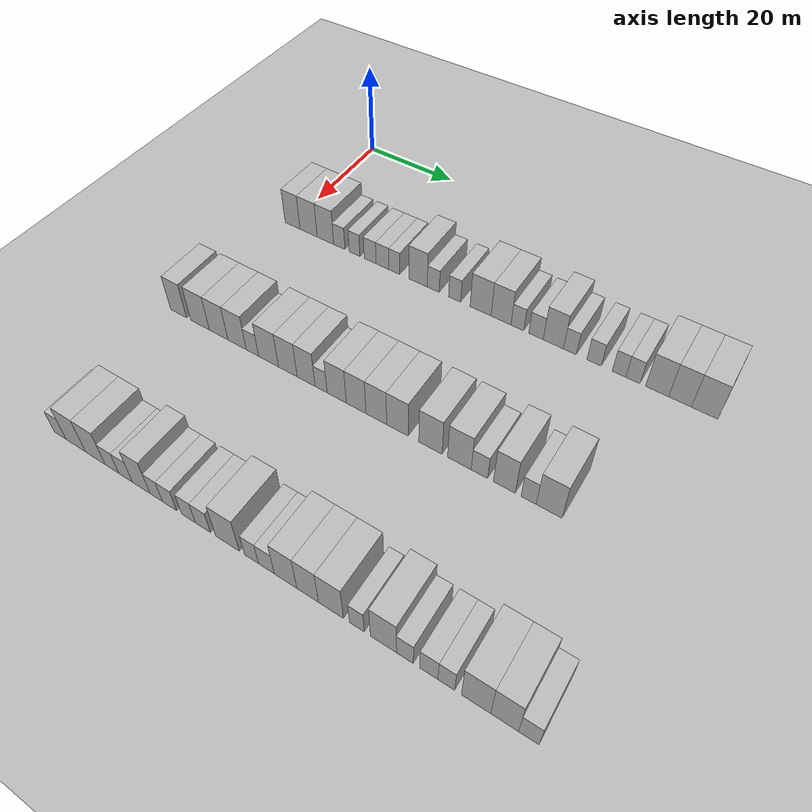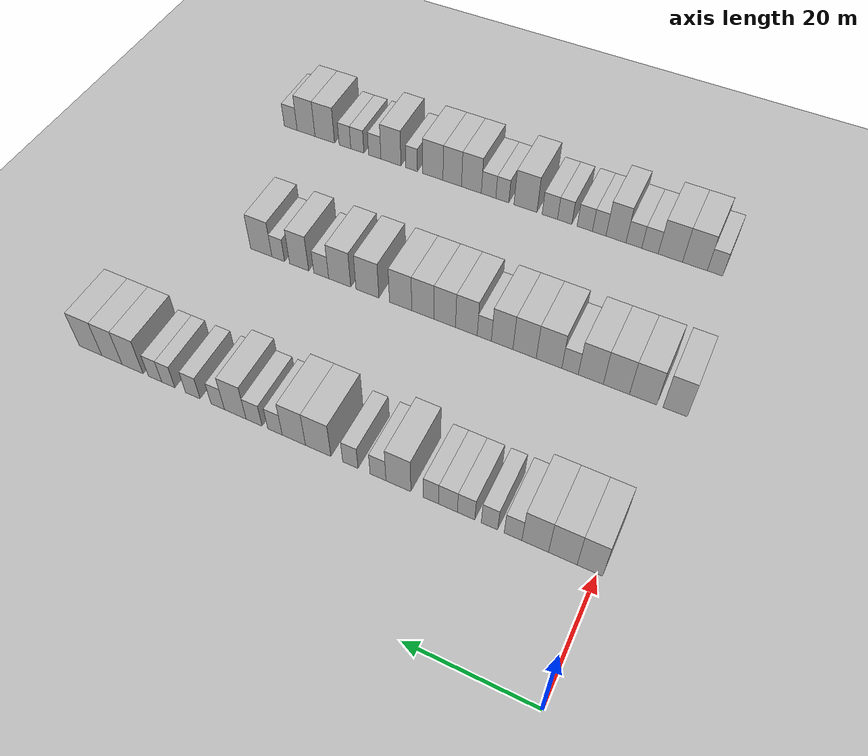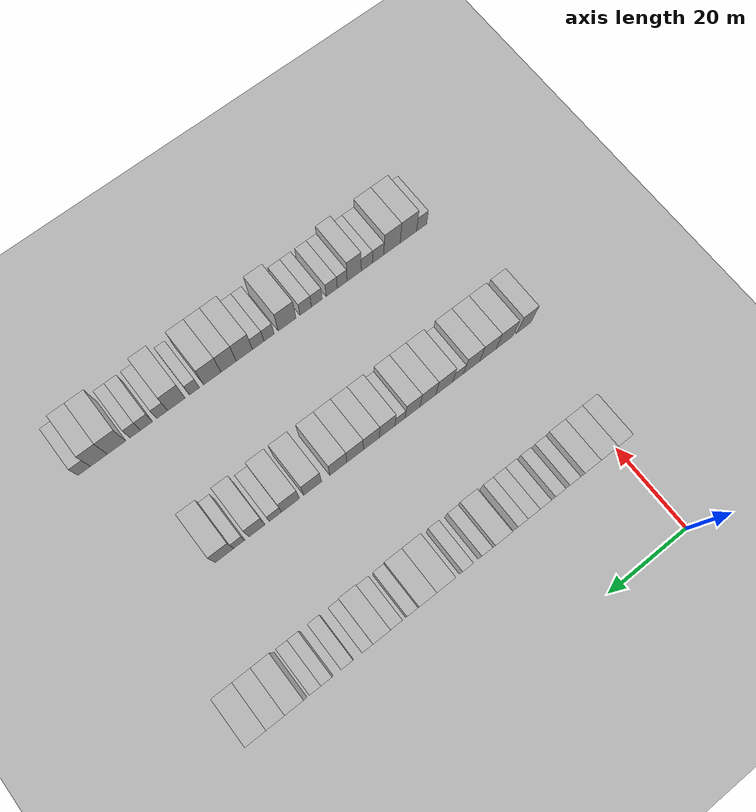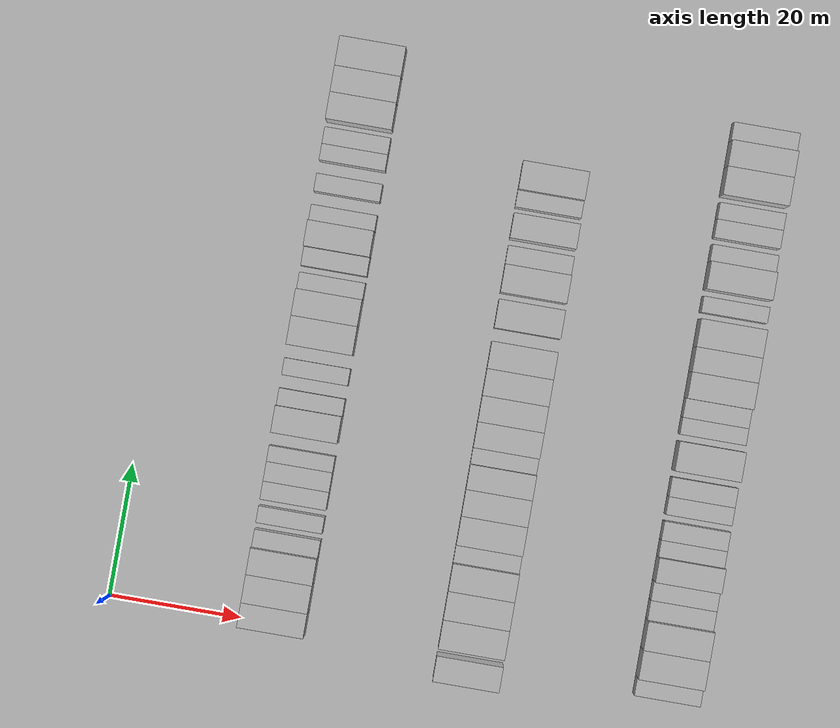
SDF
<sdf version="1.6">
 <world name="default">
  <include><name>ground_plane_1</name><uri>model://HANNAS_ground_plane</uri></include>
  <include>
   <name>ground_plane_2</name>
   <uri>model://HANNAS_ground_plane</uri>
   <pose>100 0 0  0 0 0</pose>
  </include>
  <model name="building_62">
   <static>1</static>
   <pose>25.0000 1.0413 0 0.000000 0.000000 0.000000</pose>
   <link name="link">
    <pose>0 0 4.50 0 0 0</pose>
    <collision name="collision"><geometry><box><size>10.0000 3.7216 9.0000</size></box></geometry></collision>
    <visual name="visual">
     <cast_shadows>0</cast_shadows>
     <geometry><box><size>10.0000 3.7216 9.0000</size></box></geometry>
     <material>
      <script>
       <uri>model://HANNAS_wall/materials/scripts</uri>
       <uri>model://HANNAS_wall/materials/textures</uri>
       <name>vrc/HANNAS_wall</name>
      </script>
     </material>
    </visual>
   </link>
  </model>
  <model name="building_63">
   <static>1</static>
   <pose>25.0000 5.0200 0 0.000000 0.000000 0.000000</pose>
   <link name="link">
    <pose>0 0 4.50 0 0 0</pose>
    <collision name="collision"><geometry><box><size>10.0000 4.2359 9.0000</size></box></geometry></collision>
    <visual name="visual">
     <cast_shadows>0</cast_shadows>
     <geometry><box><size>10.0000 4.2359 9.0000</size></box></geometry>
     <material>
      <script>
       <uri>model://HANNAS_wall/materials/scripts</uri>
       <uri>model://HANNAS_wall/materials/textures</uri>
       <name>vrc/HANNAS_wall</name>
      </script>
     </material>
    </visual>
   </link>
  </model>
  <model name="building_64">
   <static>1</static>
   <pose>25.0000 9.1388 0 0.000000 0.000000 0.000000</pose>
   <link name="link">
    <pose>0 0 4.50 0 0 0</pose>
    <collision name="collision"><geometry><box><size>10.0000 4.0017 9.0000</size></box></geometry></collision>
    <visual name="visual">
     <cast_shadows>0</cast_shadows>
     <geometry><box><size>10.0000 4.0017 9.0000</size></box></geometry>
     <material>
      <script>
       <uri>model://HANNAS_wall/materials/scripts</uri>
       <uri>model://HANNAS_wall/materials/textures</uri>
       <name>vrc/HANNAS_wall</name>
      </script>
     </material>
    </visual>
   </link>
  </model>
  <model name="building_65">
   <static>1</static>
   <pose>25.0000 12.4869 0 0.000000 0.000000 0.000000</pose>
   <link name="link">
    <pose>0 0 3.00 0 0 0</pose>
    <collision name="collision"><geometry><box><size>10.0000 2.6944 6.0000</size></box></geometry></collision>
    <visual name="visual">
     <cast_shadows>0</cast_shadows>
     <geometry><box><size>10.0000 2.6944 6.0000</size></box></geometry>
     <material>
      <script>
       <uri>model://HANNAS_wall/materials/scripts</uri>
       <uri>model://HANNAS_wall/materials/textures</uri>
       <name>vrc/HANNAS_wall</name>
      </script>
     </material>
    </visual>
   </link>
  </model>
  <model name="building_66">
   <static>1</static>
   <pose>25.0000 16.1002 0 0.000000 0.000000 0.000000</pose>
   <link name="link">
    <pose>0 0 3.00 0 0 0</pose>
    <collision name="collision"><geometry><box><size>10.0000 2.5323 6.0000</size></box></geometry></collision>
    <visual name="visual">
     <cast_shadows>0</cast_shadows>
     <geometry><box><size>10.0000 2.5323 6.0000</size></box></geometry>
     <material>
      <script>
       <uri>model://HANNAS_wall/materials/scripts</uri>
       <uri>model://HANNAS_wall/materials/textures</uri>
       <name>vrc/HANNAS_wall</name>
      </script>
     </material>
    </visual>
   </link>
  </model>
  <model name="building_67">
   <static>1</static>
   <pose>25.0000 19.7381 0 0.000000 0.000000 0.000000</pose>
   <link name="link">
    <pose>0 0 3.00 0 0 0</pose>
    <collision name="collision"><geometry><box><size>10.0000 2.7435 6.0000</size></box></geometry></collision>
    <visual name="visual">
     <cast_shadows>0</cast_shadows>
     <geometry><box><size>10.0000 2.7435 6.0000</size></box></geometry>
     <material>
      <script>
       <uri>model://HANNAS_wall/materials/scripts</uri>
       <uri>model://HANNAS_wall/materials/textures</uri>
       <name>vrc/HANNAS_wall</name>
      </script>
     </material>
    </visual>
   </link>
  </model>
  <model name="building_68">
   <static>1</static>
   <pose>25.0000 22.5911 0 0.000000 0.000000 0.000000</pose>
   <link name="link">
    <pose>0 0 3.00 0 0 0</pose>
    <collision name="collision"><geometry><box><size>10.0000 2.9625 6.0000</size></box></geometry></collision>
    <visual name="visual">
     <cast_shadows>0</cast_shadows>
     <geometry><box><size>10.0000 2.9625 6.0000</size></box></geometry>
     <material>
      <script>
       <uri>model://HANNAS_wall/materials/scripts</uri>
       <uri>model://HANNAS_wall/materials/textures</uri>
       <name>vrc/HANNAS_wall</name>
      </script>
     </material>
    </visual>
   </link>
  </model>
  <model name="building_69">
   <static>1</static>
   <pose>25.0000 25.2950 0 0.000000 0.000000 0.000000</pose>
   <link name="link">
    <pose>0 0 3.00 0 0 0</pose>
    <collision name="collision"><geometry><box><size>10.0000 2.4454 6.0000</size></box></geometry></collision>
    <visual name="visual">
     <cast_shadows>0</cast_shadows>
     <geometry><box><size>10.0000 2.4454 6.0000</size></box></geometry>
     <material>
      <script>
       <uri>model://HANNAS_wall/materials/scripts</uri>
       <uri>model://HANNAS_wall/materials/textures</uri>
       <name>vrc/HANNAS_wall</name>
      </script>
     </material>
    </visual>
   </link>
  </model>
  <model name="building_70">
   <static>1</static>
   <pose>25.0000 30.5503 0 0.000000 0.000000 0.000000</pose>
   <link name="link">
    <pose>0 0 4.50 0 0 0</pose>
    <collision name="collision"><geometry><box><size>10.0000 4.0652 9.0000</size></box></geometry></collision>
    <visual name="visual">
     <cast_shadows>0</cast_shadows>
     <geometry><box><size>10.0000 4.0652 9.0000</size></box></geometry>
     <material>
      <script>
       <uri>model://HANNAS_wall/materials/scripts</uri>
       <uri>model://HANNAS_wall/materials/textures</uri>
       <name>vrc/HANNAS_wall</name>
      </script>
     </material>
    </visual>
   </link>
  </model>
  <model name="building_71">
   <static>1</static>
   <pose>25.0000 33.8915 0 0.000000 0.000000 0.000000</pose>
   <link name="link">
    <pose>0 0 3.00 0 0 0</pose>
    <collision name="collision"><geometry><box><size>10.0000 2.6170 6.0000</size></box></geometry></collision>
    <visual name="visual">
     <cast_shadows>0</cast_shadows>
     <geometry><box><size>10.0000 2.6170 6.0000</size></box></geometry>
     <material>
      <script>
       <uri>model://HANNAS_wall/materials/scripts</uri>
       <uri>model://HANNAS_wall/materials/textures</uri>
       <name>vrc/HANNAS_wall</name>
      </script>
     </material>
    </visual>
   </link>
  </model>
  <model name="building_72">
   <static>1</static>
   <pose>25.0000 38.4858 0 0.000000 0.000000 0.000000</pose>
   <link name="link">
    <pose>0 0 3.00 0 0 0</pose>
    <collision name="collision"><geometry><box><size>10.0000 2.5717 6.0000</size></box></geometry></collision>
    <visual name="visual">
     <cast_shadows>0</cast_shadows>
     <geometry><box><size>10.0000 2.5717 6.0000</size></box></geometry>
     <material>
      <script>
       <uri>model://HANNAS_wall/materials/scripts</uri>
       <uri>model://HANNAS_wall/materials/textures</uri>
       <name>vrc/HANNAS_wall</name>
      </script>
     </material>
    </visual>
   </link>
  </model>
  <model name="building_73">
   <static>1</static>
   <pose>25.0000 43.9503 0 0.000000 0.000000 0.000000</pose>
   <link name="link">
    <pose>0 0 4.50 0 0 0</pose>
    <collision name="collision"><geometry><box><size>10.0000 4.3572 9.0000</size></box></geometry></collision>
    <visual name="visual">
     <cast_shadows>0</cast_shadows>
     <geometry><box><size>10.0000 4.3572 9.0000</size></box></geometry>
     <material>
      <script>
       <uri>model://HANNAS_wall/materials/scripts</uri>
       <uri>model://HANNAS_wall/materials/textures</uri>
       <name>vrc/HANNAS_wall</name>
      </script>
     </material>
    </visual>
   </link>
  </model>
  <model name="building_74">
   <static>1</static>
   <pose>25.0000 48.1517 0 0.000000 0.000000 0.000000</pose>
   <link name="link">
    <pose>0 0 4.50 0 0 0</pose>
    <collision name="collision"><geometry><box><size>10.0000 4.0455 9.0000</size></box></geometry></collision>
    <visual name="visual">
     <cast_shadows>0</cast_shadows>
     <geometry><box><size>10.0000 4.0455 9.0000</size></box></geometry>
     <material>
      <script>
       <uri>model://HANNAS_wall/materials/scripts</uri>
       <uri>model://HANNAS_wall/materials/textures</uri>
       <name>vrc/HANNAS_wall</name>
      </script>
     </material>
    </visual>
   </link>
  </model>
  <model name="building_75">
   <static>1</static>
   <pose>25.0000 51.4539 0 0.000000 0.000000 0.000000</pose>
   <link name="link">
    <pose>0 0 3.00 0 0 0</pose>
    <collision name="collision"><geometry><box><size>10.0000 2.5588 6.0000</size></box></geometry></collision>
    <visual name="visual">
     <cast_shadows>0</cast_shadows>
     <geometry><box><size>10.0000 2.5588 6.0000</size></box></geometry>
     <material>
      <script>
       <uri>model://HANNAS_wall/materials/scripts</uri>
       <uri>model://HANNAS_wall/materials/textures</uri>
       <name>vrc/HANNAS_wall</name>
      </script>
     </material>
    </visual>
   </link>
  </model>
  <model name="building_76">
   <static>1</static>
   <pose>25.0000 55.1612 0 0.000000 0.000000 0.000000</pose>
   <link name="link">
    <pose>0 0 3.00 0 0 0</pose>
    <collision name="collision"><geometry><box><size>10.0000 2.8559 6.0000</size></box></geometry></collision>
    <visual name="visual">
     <cast_shadows>0</cast_shadows>
     <geometry><box><size>10.0000 2.8559 6.0000</size></box></geometry>
     <material>
      <script>
       <uri>model://HANNAS_wall/materials/scripts</uri>
       <uri>model://HANNAS_wall/materials/textures</uri>
       <name>vrc/HANNAS_wall</name>
      </script>
     </material>
    </visual>
   </link>
  </model>
  <model name="building_77">
   <static>1</static>
   <pose>25.0000 58.5485 0 0.000000 0.000000 0.000000</pose>
   <link name="link">
    <pose>0 0 4.50 0 0 0</pose>
    <collision name="collision"><geometry><box><size>10.0000 3.9186 9.0000</size></box></geometry></collision>
    <visual name="visual">
     <cast_shadows>0</cast_shadows>
     <geometry><box><size>10.0000 3.9186 9.0000</size></box></geometry>
     <material>
      <script>
       <uri>model://HANNAS_wall/materials/scripts</uri>
       <uri>model://HANNAS_wall/materials/textures</uri>
       <name>vrc/HANNAS_wall</name>
      </script>
     </material>
    </visual>
   </link>
  </model>
  <model name="building_78">
   <static>1</static>
   <pose>25.0000 61.7384 0 0.000000 0.000000 0.000000</pose>
   <link name="link">
    <pose>0 0 3.00 0 0 0</pose>
    <collision name="collision"><geometry><box><size>10.0000 2.4612 6.0000</size></box></geometry></collision>
    <visual name="visual">
     <cast_shadows>0</cast_shadows>
     <geometry><box><size>10.0000 2.4612 6.0000</size></box></geometry>
     <material>
      <script>
       <uri>model://HANNAS_wall/materials/scripts</uri>
       <uri>model://HANNAS_wall/materials/textures</uri>
       <name>vrc/HANNAS_wall</name>
      </script>
     </material>
    </visual>
   </link>
  </model>
  <model name="building_79">
   <static>1</static>
   <pose>25.0000 66.3176 0 0.000000 0.000000 0.000000</pose>
   <link name="link">
    <pose>0 0 3.00 0 0 0</pose>
    <collision name="collision"><geometry><box><size>10.0000 2.6974 6.0000</size></box></geometry></collision>
    <visual name="visual">
     <cast_shadows>0</cast_shadows>
     <geometry><box><size>10.0000 2.6974 6.0000</size></box></geometry>
     <material>
      <script>
       <uri>model://HANNAS_wall/materials/scripts</uri>
       <uri>model://HANNAS_wall/materials/textures</uri>
       <name>vrc/HANNAS_wall</name>
      </script>
     </material>
    </visual>
   </link>
  </model>
  <model name="building_80">
   <static>1</static>
   <pose>25.0000 70.9090 0 0.000000 0.000000 0.000000</pose>
   <link name="link">
    <pose>0 0 3.00 0 0 0</pose>
    <collision name="collision"><geometry><box><size>10.0000 2.4852 6.0000</size></box></geometry></collision>
    <visual name="visual">
     <cast_shadows>0</cast_shadows>
     <geometry><box><size>10.0000 2.4852 6.0000</size></box></geometry>
     <material>
      <script>
       <uri>model://HANNAS_wall/materials/scripts</uri>
       <uri>model://HANNAS_wall/materials/textures</uri>
       <name>vrc/HANNAS_wall</name>
      </script>
     </material>
    </visual>
   </link>
  </model>
  <model name="building_81">
   <static>1</static>
   <pose>25.0000 73.4244 0 0.000000 0.000000 0.000000</pose>
   <link name="link">
    <pose>0 0 3.00 0 0 0</pose>
    <collision name="collision"><geometry><box><size>10.0000 2.5457 6.0000</size></box></geometry></collision>
    <visual name="visual">
     <cast_shadows>0</cast_shadows>
     <geometry><box><size>10.0000 2.5457 6.0000</size></box></geometry>
     <material>
      <script>
       <uri>model://HANNAS_wall/materials/scripts</uri>
       <uri>model://HANNAS_wall/materials/textures</uri>
       <name>vrc/HANNAS_wall</name>
      </script>
     </material>
    </visual>
   </link>
  </model>
  <model name="building_82">
   <static>1</static>
   <pose>25.0000 77.7283 0 0.000000 0.000000 0.000000</pose>
   <link name="link">
    <pose>0 0 4.50 0 0 0</pose>
    <collision name="collision"><geometry><box><size>10.0000 4.0621 9.0000</size></box></geometry></collision>
    <visual name="visual">
     <cast_shadows>0</cast_shadows>
     <geometry><box><size>10.0000 4.0621 9.0000</size></box></geometry>
     <material>
      <script>
       <uri>model://HANNAS_wall/materials/scripts</uri>
       <uri>model://HANNAS_wall/materials/textures</uri>
       <name>vrc/HANNAS_wall</name>
      </script>
     </material>
    </visual>
   </link>
  </model>
  <model name="building_83">
   <static>1</static>
   <pose>25.0000 81.7372 0 0.000000 0.000000 0.000000</pose>
   <link name="link">
    <pose>0 0 4.50 0 0 0</pose>
    <collision name="collision"><geometry><box><size>10.0000 3.9558 9.0000</size></box></geometry></collision>
    <visual name="visual">
     <cast_shadows>0</cast_shadows>
     <geometry><box><size>10.0000 3.9558 9.0000</size></box></geometry>
     <material>
      <script>
       <uri>model://HANNAS_wall/materials/scripts</uri>
       <uri>model://HANNAS_wall/materials/textures</uri>
       <name>vrc/HANNAS_wall</name>
      </script>
     </material>
    </visual>
   </link>
  </model>
  <model name="building_84">
   <static>1</static>
   <pose>25.0000 85.9543 0 0.000000 0.000000 0.000000</pose>
   <link name="link">
    <pose>0 0 4.50 0 0 0</pose>
    <collision name="collision"><geometry><box><size>10.0000 4.4783 9.0000</size></box></geometry></collision>
    <visual name="visual">
     <cast_shadows>0</cast_shadows>
     <geometry><box><size>10.0000 4.4783 9.0000</size></box></geometry>
     <material>
      <script>
       <uri>model://HANNAS_wall/materials/scripts</uri>
       <uri>model://HANNAS_wall/materials/textures</uri>
       <name>vrc/HANNAS_wall</name>
      </script>
     </material>
    </visual>
   </link>
  </model>
  <model name="building_196">
   <static>1</static>
   <pose>55.0000 -1.7819 0 0.000000 0.000000 0.000000</pose>
   <link name="link">
    <pose>0 0 4.50 0 0 0</pose>
    <collision name="collision"><geometry><box><size>10.0000 3.8635 9.0000</size></box></geometry></collision>
    <visual name="visual">
     <cast_shadows>0</cast_shadows>
     <geometry><box><size>10.0000 3.8635 9.0000</size></box></geometry>
     <material>
      <script>
       <uri>model://HANNAS_wall/materials/scripts</uri>
       <uri>model://HANNAS_wall/materials/textures</uri>
       <name>vrc/HANNAS_wall</name>
      </script>
     </material>
    </visual>
   </link>
  </model>
  <model name="building_197">
   <static>1</static>
   <pose>55.0000 3.3501 0 0.000000 0.000000 0.000000</pose>
   <link name="link">
    <pose>0 0 4.50 0 0 0</pose>
    <collision name="collision"><geometry><box><size>10.0000 4.4006 9.0000</size></box></geometry></collision>
    <visual name="visual">
     <cast_shadows>0</cast_shadows>
     <geometry><box><size>10.0000 4.4006 9.0000</size></box></geometry>
     <material>
      <script>
       <uri>model://HANNAS_wall/materials/scripts</uri>
       <uri>model://HANNAS_wall/materials/textures</uri>
       <name>vrc/HANNAS_wall</name>
      </script>
     </material>
    </visual>
   </link>
  </model>
  <model name="building_198">
   <static>1</static>
   <pose>55.0000 7.7019 0 0.000000 0.000000 0.000000</pose>
   <link name="link">
    <pose>0 0 4.50 0 0 0</pose>
    <collision name="collision"><geometry><box><size>10.0000 4.3029 9.0000</size></box></geometry></collision>
    <visual name="visual">
     <cast_shadows>0</cast_shadows>
     <geometry><box><size>10.0000 4.3029 9.0000</size></box></geometry>
     <material>
      <script>
       <uri>model://HANNAS_wall/materials/scripts</uri>
       <uri>model://HANNAS_wall/materials/textures</uri>
       <name>vrc/HANNAS_wall</name>
      </script>
     </material>
    </visual>
   </link>
  </model>
  <model name="building_199">
   <static>1</static>
   <pose>55.0000 11.9376 0 0.000000 0.000000 0.000000</pose>
   <link name="link">
    <pose>0 0 4.50 0 0 0</pose>
    <collision name="collision"><geometry><box><size>10.0000 4.1685 9.0000</size></box></geometry></collision>
    <visual name="visual">
     <cast_shadows>0</cast_shadows>
     <geometry><box><size>10.0000 4.1685 9.0000</size></box></geometry>
     <material>
      <script>
       <uri>model://HANNAS_wall/materials/scripts</uri>
       <uri>model://HANNAS_wall/materials/textures</uri>
       <name>vrc/HANNAS_wall</name>
      </script>
     </material>
    </visual>
   </link>
  </model>
  <model name="building_200">
   <static>1</static>
   <pose>55.0000 15.4024 0 0.000000 0.000000 0.000000</pose>
   <link name="link">
    <pose>0 0 3.00 0 0 0</pose>
    <collision name="collision"><geometry><box><size>10.0000 2.7611 6.0000</size></box></geometry></collision>
    <visual name="visual">
     <cast_shadows>0</cast_shadows>
     <geometry><box><size>10.0000 2.7611 6.0000</size></box></geometry>
     <material>
      <script>
       <uri>model://HANNAS_wall/materials/scripts</uri>
       <uri>model://HANNAS_wall/materials/textures</uri>
       <name>vrc/HANNAS_wall</name>
      </script>
     </material>
    </visual>
   </link>
  </model>
  <model name="building_201">
   <static>1</static>
   <pose>55.0000 18.9640 0 0.000000 0.000000 0.000000</pose>
   <link name="link">
    <pose>0 0 4.50 0 0 0</pose>
    <collision name="collision"><geometry><box><size>10.0000 4.3622 9.0000</size></box></geometry></collision>
    <visual name="visual">
     <cast_shadows>0</cast_shadows>
     <geometry><box><size>10.0000 4.3622 9.0000</size></box></geometry>
     <material>
      <script>
       <uri>model://HANNAS_wall/materials/scripts</uri>
       <uri>model://HANNAS_wall/materials/textures</uri>
       <name>vrc/HANNAS_wall</name>
      </script>
     </material>
    </visual>
   </link>
  </model>
  <model name="building_202">
   <static>1</static>
   <pose>55.0000 23.1577 0 0.000000 0.000000 0.000000</pose>
   <link name="link">
    <pose>0 0 4.50 0 0 0</pose>
    <collision name="collision"><geometry><box><size>10.0000 4.0252 9.0000</size></box></geometry></collision>
    <visual name="visual">
     <cast_shadows>0</cast_shadows>
     <geometry><box><size>10.0000 4.0252 9.0000</size></box></geometry>
     <material>
      <script>
       <uri>model://HANNAS_wall/materials/scripts</uri>
       <uri>model://HANNAS_wall/materials/textures</uri>
       <name>vrc/HANNAS_wall</name>
      </script>
     </material>
    </visual>
   </link>
  </model>
  <model name="building_203">
   <static>1</static>
   <pose>55.0000 27.0591 0 0.000000 0.000000 0.000000</pose>
   <link name="link">
    <pose>0 0 4.50 0 0 0</pose>
    <collision name="collision"><geometry><box><size>10.0000 3.7776 9.0000</size></box></geometry></collision>
    <visual name="visual">
     <cast_shadows>0</cast_shadows>
     <geometry><box><size>10.0000 3.7776 9.0000</size></box></geometry>
     <material>
      <script>
       <uri>model://HANNAS_wall/materials/scripts</uri>
       <uri>model://HANNAS_wall/materials/textures</uri>
       <name>vrc/HANNAS_wall</name>
      </script>
     </material>
    </visual>
   </link>
  </model>
  <model name="building_204">
   <static>1</static>
   <pose>55.0000 30.2005 0 0.000000 0.000000 0.000000</pose>
   <link name="link">
    <pose>0 0 3.00 0 0 0</pose>
    <collision name="collision"><geometry><box><size>10.0000 2.5053 6.0000</size></box></geometry></collision>
    <visual name="visual">
     <cast_shadows>0</cast_shadows>
     <geometry><box><size>10.0000 2.5053 6.0000</size></box></geometry>
     <material>
      <script>
       <uri>model://HANNAS_wall/materials/scripts</uri>
       <uri>model://HANNAS_wall/materials/textures</uri>
       <name>vrc/HANNAS_wall</name>
      </script>
     </material>
    </visual>
   </link>
  </model>
  <model name="building_205">
   <static>1</static>
   <pose>55.0000 33.4042 0 0.000000 0.000000 0.000000</pose>
   <link name="link">
    <pose>0 0 4.50 0 0 0</pose>
    <collision name="collision"><geometry><box><size>10.0000 3.9020 9.0000</size></box></geometry></collision>
    <visual name="visual">
     <cast_shadows>0</cast_shadows>
     <geometry><box><size>10.0000 3.9020 9.0000</size></box></geometry>
     <material>
      <script>
       <uri>model://HANNAS_wall/materials/scripts</uri>
       <uri>model://HANNAS_wall/materials/textures</uri>
       <name>vrc/HANNAS_wall</name>
      </script>
     </material>
    </visual>
   </link>
  </model>
  <model name="building_206">
   <static>1</static>
   <pose>55.0000 37.3267 0 0.000000 0.000000 0.000000</pose>
   <link name="link">
    <pose>0 0 4.50 0 0 0</pose>
    <collision name="collision"><geometry><box><size>10.0000 3.9429 9.0000</size></box></geometry></collision>
    <visual name="visual">
     <cast_shadows>0</cast_shadows>
     <geometry><box><size>10.0000 3.9429 9.0000</size></box></geometry>
     <material>
      <script>
       <uri>model://HANNAS_wall/materials/scripts</uri>
       <uri>model://HANNAS_wall/materials/textures</uri>
       <name>vrc/HANNAS_wall</name>
      </script>
     </material>
    </visual>
   </link>
  </model>
  <model name="building_207">
   <static>1</static>
   <pose>55.0000 41.3250 0 0.000000 0.000000 0.000000</pose>
   <link name="link">
    <pose>0 0 4.50 0 0 0</pose>
    <collision name="collision"><geometry><box><size>10.0000 4.0538 9.0000</size></box></geometry></collision>
    <visual name="visual">
     <cast_shadows>0</cast_shadows>
     <geometry><box><size>10.0000 4.0538 9.0000</size></box></geometry>
     <material>
      <script>
       <uri>model://HANNAS_wall/materials/scripts</uri>
       <uri>model://HANNAS_wall/materials/textures</uri>
       <name>vrc/HANNAS_wall</name>
      </script>
     </material>
    </visual>
   </link>
  </model>
  <model name="building_208">
   <static>1</static>
   <pose>55.0000 45.4141 0 0.000000 0.000000 0.000000</pose>
   <link name="link">
    <pose>0 0 4.50 0 0 0</pose>
    <collision name="collision"><geometry><box><size>10.0000 4.1245 9.0000</size></box></geometry></collision>
    <visual name="visual">
     <cast_shadows>0</cast_shadows>
     <geometry><box><size>10.0000 4.1245 9.0000</size></box></geometry>
     <material>
      <script>
       <uri>model://HANNAS_wall/materials/scripts</uri>
       <uri>model://HANNAS_wall/materials/textures</uri>
       <name>vrc/HANNAS_wall</name>
      </script>
     </material>
    </visual>
   </link>
  </model>
  <model name="building_209">
   <static>1</static>
   <pose>55.0000 51.6454 0 0.000000 0.000000 0.000000</pose>
   <link name="link">
    <pose>0 0 4.50 0 0 0</pose>
    <collision name="collision"><geometry><box><size>10.0000 4.3380 9.0000</size></box></geometry></collision>
    <visual name="visual">
     <cast_shadows>0</cast_shadows>
     <geometry><box><size>10.0000 4.3380 9.0000</size></box></geometry>
     <material>
      <script>
       <uri>model://HANNAS_wall/materials/scripts</uri>
       <uri>model://HANNAS_wall/materials/textures</uri>
       <name>vrc/HANNAS_wall</name>
      </script>
     </material>
    </visual>
   </link>
  </model>
  <model name="building_210">
   <static>1</static>
   <pose>55.0000 56.9521 0 0.000000 0.000000 0.000000</pose>
   <link name="link">
    <pose>0 0 4.50 0 0 0</pose>
    <collision name="collision"><geometry><box><size>10.0000 4.2754 9.0000</size></box></geometry></collision>
    <visual name="visual">
     <cast_shadows>0</cast_shadows>
     <geometry><box><size>10.0000 4.2754 9.0000</size></box></geometry>
     <material>
      <script>
       <uri>model://HANNAS_wall/materials/scripts</uri>
       <uri>model://HANNAS_wall/materials/textures</uri>
       <name>vrc/HANNAS_wall</name>
      </script>
     </material>
    </visual>
   </link>
  </model>
  <model name="building_211">
   <static>1</static>
   <pose>55.0000 60.5461 0 0.000000 0.000000 0.000000</pose>
   <link name="link">
    <pose>0 0 3.00 0 0 0</pose>
    <collision name="collision"><geometry><box><size>10.0000 2.9125 6.0000</size></box></geometry></collision>
    <visual name="visual">
     <cast_shadows>0</cast_shadows>
     <geometry><box><size>10.0000 2.9125 6.0000</size></box></geometry>
     <material>
      <script>
       <uri>model://HANNAS_wall/materials/scripts</uri>
       <uri>model://HANNAS_wall/materials/textures</uri>
       <name>vrc/HANNAS_wall</name>
      </script>
     </material>
    </visual>
   </link>
  </model>
  <model name="building_212">
   <static>1</static>
   <pose>55.0000 64.8943 0 0.000000 0.000000 0.000000</pose>
   <link name="link">
    <pose>0 0 4.50 0 0 0</pose>
    <collision name="collision"><geometry><box><size>10.0000 3.7839 9.0000</size></box></geometry></collision>
    <visual name="visual">
     <cast_shadows>0</cast_shadows>
     <geometry><box><size>10.0000 3.7839 9.0000</size></box></geometry>
     <material>
      <script>
       <uri>model://HANNAS_wall/materials/scripts</uri>
       <uri>model://HANNAS_wall/materials/textures</uri>
       <name>vrc/HANNAS_wall</name>
      </script>
     </material>
    </visual>
   </link>
  </model>
  <model name="building_213">
   <static>1</static>
   <pose>55.0000 69.0647 0 0.000000 0.000000 0.000000</pose>
   <link name="link">
    <pose>0 0 3.00 0 0 0</pose>
    <collision name="collision"><geometry><box><size>10.0000 2.5570 6.0000</size></box></geometry></collision>
    <visual name="visual">
     <cast_shadows>0</cast_shadows>
     <geometry><box><size>10.0000 2.5570 6.0000</size></box></geometry>
     <material>
      <script>
       <uri>model://HANNAS_wall/materials/scripts</uri>
       <uri>model://HANNAS_wall/materials/textures</uri>
       <name>vrc/HANNAS_wall</name>
      </script>
     </material>
    </visual>
   </link>
  </model>
  <model name="building_214">
   <static>1</static>
   <pose>55.0000 72.4928 0 0.000000 0.000000 0.000000</pose>
   <link name="link">
    <pose>0 0 4.50 0 0 0</pose>
    <collision name="collision"><geometry><box><size>10.0000 4.2993 9.0000</size></box></geometry></collision>
    <visual name="visual">
     <cast_shadows>0</cast_shadows>
     <geometry><box><size>10.0000 4.2993 9.0000</size></box></geometry>
     <material>
      <script>
       <uri>model://HANNAS_wall/materials/scripts</uri>
       <uri>model://HANNAS_wall/materials/textures</uri>
       <name>vrc/HANNAS_wall</name>
      </script>
     </material>
    </visual>
   </link>
  </model>
  <model name="building_328">
   <static>1</static>
   <pose>85.0000 0.4724 0 0.000000 0.000000 0.000000</pose>
   <link name="link">
    <pose>0 0 3.00 0 0 0</pose>
    <collision name="collision"><geometry><box><size>10.0000 2.6921 6.0000</size></box></geometry></collision>
    <visual name="visual">
     <cast_shadows>0</cast_shadows>
     <geometry><box><size>10.0000 2.6921 6.0000</size></box></geometry>
     <material>
      <script>
       <uri>model://HANNAS_wall/materials/scripts</uri>
       <uri>model://HANNAS_wall/materials/textures</uri>
       <name>vrc/HANNAS_wall</name>
      </script>
     </material>
    </visual>
   </link>
  </model>
  <model name="building_329">
   <static>1</static>
   <pose>85.0000 4.0005 0 0.000000 0.000000 0.000000</pose>
   <link name="link">
    <pose>0 0 4.50 0 0 0</pose>
    <collision name="collision"><geometry><box><size>10.0000 4.3640 9.0000</size></box></geometry></collision>
    <visual name="visual">
     <cast_shadows>0</cast_shadows>
     <geometry><box><size>10.0000 4.3640 9.0000</size></box></geometry>
     <material>
      <script>
       <uri>model://HANNAS_wall/materials/scripts</uri>
       <uri>model://HANNAS_wall/materials/textures</uri>
       <name>vrc/HANNAS_wall</name>
      </script>
     </material>
    </visual>
   </link>
  </model>
  <model name="building_330">
   <static>1</static>
   <pose>85.0000 8.3640 0 0.000000 0.000000 0.000000</pose>
   <link name="link">
    <pose>0 0 4.50 0 0 0</pose>
    <collision name="collision"><geometry><box><size>10.0000 4.3631 9.0000</size></box></geometry></collision>
    <visual name="visual">
     <cast_shadows>0</cast_shadows>
     <geometry><box><size>10.0000 4.3631 9.0000</size></box></geometry>
     <material>
      <script>
       <uri>model://HANNAS_wall/materials/scripts</uri>
       <uri>model://HANNAS_wall/materials/textures</uri>
       <name>vrc/HANNAS_wall</name>
      </script>
     </material>
    </visual>
   </link>
  </model>
  <model name="building_331">
   <static>1</static>
   <pose>85.0000 12.0318 0 0.000000 0.000000 0.000000</pose>
   <link name="link">
    <pose>0 0 3.00 0 0 0</pose>
    <collision name="collision"><geometry><box><size>10.0000 2.9725 6.0000</size></box></geometry></collision>
    <visual name="visual">
     <cast_shadows>0</cast_shadows>
     <geometry><box><size>10.0000 2.9725 6.0000</size></box></geometry>
     <material>
      <script>
       <uri>model://HANNAS_wall/materials/scripts</uri>
       <uri>model://HANNAS_wall/materials/textures</uri>
       <name>vrc/HANNAS_wall</name>
      </script>
     </material>
    </visual>
   </link>
  </model>
  <model name="building_332">
   <static>1</static>
   <pose>85.0000 14.9593 0 0.000000 0.000000 0.000000</pose>
   <link name="link">
    <pose>0 0 3.00 0 0 0</pose>
    <collision name="collision"><geometry><box><size>10.0000 2.8824 6.0000</size></box></geometry></collision>
    <visual name="visual">
     <cast_shadows>0</cast_shadows>
     <geometry><box><size>10.0000 2.8824 6.0000</size></box></geometry>
     <material>
      <script>
       <uri>model://HANNAS_wall/materials/scripts</uri>
       <uri>model://HANNAS_wall/materials/textures</uri>
       <name>vrc/HANNAS_wall</name>
      </script>
     </material>
    </visual>
   </link>
  </model>
  <model name="building_333">
   <static>1</static>
   <pose>85.0000 18.2479 0 0.000000 0.000000 0.000000</pose>
   <link name="link">
    <pose>0 0 4.50 0 0 0</pose>
    <collision name="collision"><geometry><box><size>10.0000 3.6948 9.0000</size></box></geometry></collision>
    <visual name="visual">
     <cast_shadows>0</cast_shadows>
     <geometry><box><size>10.0000 3.6948 9.0000</size></box></geometry>
     <material>
      <script>
       <uri>model://HANNAS_wall/materials/scripts</uri>
       <uri>model://HANNAS_wall/materials/textures</uri>
       <name>vrc/HANNAS_wall</name>
      </script>
     </material>
    </visual>
   </link>
  </model>
  <model name="building_334">
   <static>1</static>
   <pose>85.0000 21.3596 0 0.000000 0.000000 0.000000</pose>
   <link name="link">
    <pose>0 0 3.00 0 0 0</pose>
    <collision name="collision"><geometry><box><size>10.0000 2.5287 6.0000</size></box></geometry></collision>
    <visual name="visual">
     <cast_shadows>0</cast_shadows>
     <geometry><box><size>10.0000 2.5287 6.0000</size></box></geometry>
     <material>
      <script>
       <uri>model://HANNAS_wall/materials/scripts</uri>
       <uri>model://HANNAS_wall/materials/textures</uri>
       <name>vrc/HANNAS_wall</name>
      </script>
     </material>
    </visual>
   </link>
  </model>
  <model name="building_335">
   <static>1</static>
   <pose>85.0000 24.0618 0 0.000000 0.000000 0.000000</pose>
   <link name="link">
    <pose>0 0 3.00 0 0 0</pose>
    <collision name="collision"><geometry><box><size>10.0000 2.8757 6.0000</size></box></geometry></collision>
    <visual name="visual">
     <cast_shadows>0</cast_shadows>
     <geometry><box><size>10.0000 2.8757 6.0000</size></box></geometry>
     <material>
      <script>
       <uri>model://HANNAS_wall/materials/scripts</uri>
       <uri>model://HANNAS_wall/materials/textures</uri>
       <name>vrc/HANNAS_wall</name>
      </script>
     </material>
    </visual>
   </link>
  </model>
  <model name="building_336">
   <static>1</static>
   <pose>85.0000 27.8574 0 0.000000 0.000000 0.000000</pose>
   <link name="link">
    <pose>0 0 3.00 0 0 0</pose>
    <collision name="collision"><geometry><box><size>10.0000 2.7157 6.0000</size></box></geometry></collision>
    <visual name="visual">
     <cast_shadows>0</cast_shadows>
     <geometry><box><size>10.0000 2.7157 6.0000</size></box></geometry>
     <material>
      <script>
       <uri>model://HANNAS_wall/materials/scripts</uri>
       <uri>model://HANNAS_wall/materials/textures</uri>
       <name>vrc/HANNAS_wall</name>
      </script>
     </material>
    </visual>
   </link>
  </model>
  <model name="building_337">
   <static>1</static>
   <pose>85.0000 30.6917 0 0.000000 0.000000 0.000000</pose>
   <link name="link">
    <pose>0 0 3.00 0 0 0</pose>
    <collision name="collision"><geometry><box><size>10.0000 2.9528 6.0000</size></box></geometry></collision>
    <visual name="visual">
     <cast_shadows>0</cast_shadows>
     <geometry><box><size>10.0000 2.9528 6.0000</size></box></geometry>
     <material>
      <script>
       <uri>model://HANNAS_wall/materials/scripts</uri>
       <uri>model://HANNAS_wall/materials/textures</uri>
       <name>vrc/HANNAS_wall</name>
      </script>
     </material>
    </visual>
   </link>
  </model>
  <model name="building_338">
   <static>1</static>
   <pose>85.0000 35.4064 0 0.000000 0.000000 0.000000</pose>
   <link name="link">
    <pose>0 0 4.50 0 0 0</pose>
    <collision name="collision"><geometry><box><size>10.0000 4.4766 9.0000</size></box></geometry></collision>
    <visual name="visual">
     <cast_shadows>0</cast_shadows>
     <geometry><box><size>10.0000 4.4766 9.0000</size></box></geometry>
     <material>
      <script>
       <uri>model://HANNAS_wall/materials/scripts</uri>
       <uri>model://HANNAS_wall/materials/textures</uri>
       <name>vrc/HANNAS_wall</name>
      </script>
     </material>
    </visual>
   </link>
  </model>
  <model name="building_339">
   <static>1</static>
   <pose>85.0000 39.9255 0 0.000000 0.000000 0.000000</pose>
   <link name="link">
    <pose>0 0 3.00 0 0 0</pose>
    <collision name="collision"><geometry><box><size>10.0000 2.5616 6.0000</size></box></geometry></collision>
    <visual name="visual">
     <cast_shadows>0</cast_shadows>
     <geometry><box><size>10.0000 2.5616 6.0000</size></box></geometry>
     <material>
      <script>
       <uri>model://HANNAS_wall/materials/scripts</uri>
       <uri>model://HANNAS_wall/materials/textures</uri>
       <name>vrc/HANNAS_wall</name>
      </script>
     </material>
    </visual>
   </link>
  </model>
  <model name="building_340">
   <static>1</static>
   <pose>85.0000 42.6473 0 0.000000 0.000000 0.000000</pose>
   <link name="link">
    <pose>0 0 3.00 0 0 0</pose>
    <collision name="collision"><geometry><box><size>10.0000 2.8820 6.0000</size></box></geometry></collision>
    <visual name="visual">
     <cast_shadows>0</cast_shadows>
     <geometry><box><size>10.0000 2.8820 6.0000</size></box></geometry>
     <material>
      <script>
       <uri>model://HANNAS_wall/materials/scripts</uri>
       <uri>model://HANNAS_wall/materials/textures</uri>
       <name>vrc/HANNAS_wall</name>
      </script>
     </material>
    </visual>
   </link>
  </model>
  <model name="building_341">
   <static>1</static>
   <pose>85.0000 46.0859 0 0.000000 0.000000 0.000000</pose>
   <link name="link">
    <pose>0 0 4.50 0 0 0</pose>
    <collision name="collision"><geometry><box><size>10.0000 3.9952 9.0000</size></box></geometry></collision>
    <visual name="visual">
     <cast_shadows>0</cast_shadows>
     <geometry><box><size>10.0000 3.9952 9.0000</size></box></geometry>
     <material>
      <script>
       <uri>model://HANNAS_wall/materials/scripts</uri>
       <uri>model://HANNAS_wall/materials/textures</uri>
       <name>vrc/HANNAS_wall</name>
      </script>
     </material>
    </visual>
   </link>
  </model>
  <model name="building_342">
   <static>1</static>
   <pose>85.0000 49.9705 0 0.000000 0.000000 0.000000</pose>
   <link name="link">
    <pose>0 0 4.50 0 0 0</pose>
    <collision name="collision"><geometry><box><size>10.0000 3.7740 9.0000</size></box></geometry></collision>
    <visual name="visual">
     <cast_shadows>0</cast_shadows>
     <geometry><box><size>10.0000 3.7740 9.0000</size></box></geometry>
     <material>
      <script>
       <uri>model://HANNAS_wall/materials/scripts</uri>
       <uri>model://HANNAS_wall/materials/textures</uri>
       <name>vrc/HANNAS_wall</name>
      </script>
     </material>
    </visual>
   </link>
  </model>
  <model name="building_343">
   <static>1</static>
   <pose>85.0000 53.9762 0 0.000000 0.000000 0.000000</pose>
   <link name="link">
    <pose>0 0 4.50 0 0 0</pose>
    <collision name="collision"><geometry><box><size>10.0000 4.2375 9.0000</size></box></geometry></collision>
    <visual name="visual">
     <cast_shadows>0</cast_shadows>
     <geometry><box><size>10.0000 4.2375 9.0000</size></box></geometry>
     <material>
      <script>
       <uri>model://HANNAS_wall/materials/scripts</uri>
       <uri>model://HANNAS_wall/materials/textures</uri>
       <name>vrc/HANNAS_wall</name>
      </script>
     </material>
    </visual>
   </link>
  </model>
  <model name="building_344">
   <static>1</static>
   <pose>85.0000 58.3173 0 0.000000 0.000000 0.000000</pose>
   <link name="link">
    <pose>0 0 3.00 0 0 0</pose>
    <collision name="collision"><geometry><box><size>10.0000 2.4447 6.0000</size></box></geometry></collision>
    <visual name="visual">
     <cast_shadows>0</cast_shadows>
     <geometry><box><size>10.0000 2.4447 6.0000</size></box></geometry>
     <material>
      <script>
       <uri>model://HANNAS_wall/materials/scripts</uri>
       <uri>model://HANNAS_wall/materials/textures</uri>
       <name>vrc/HANNAS_wall</name>
      </script>
     </material>
    </visual>
   </link>
  </model>
  <model name="building_345">
   <static>1</static>
   <pose>85.0000 62.6440 0 0.000000 0.000000 0.000000</pose>
   <link name="link">
    <pose>0 0 4.50 0 0 0</pose>
    <collision name="collision"><geometry><box><size>10.0000 4.2086 9.0000</size></box></geometry></collision>
    <visual name="visual">
     <cast_shadows>0</cast_shadows>
     <geometry><box><size>10.0000 4.2086 9.0000</size></box></geometry>
     <material>
      <script>
       <uri>model://HANNAS_wall/materials/scripts</uri>
       <uri>model://HANNAS_wall/materials/textures</uri>
       <name>vrc/HANNAS_wall</name>
      </script>
     </material>
    </visual>
   </link>
  </model>
  <model name="building_346">
   <static>1</static>
   <pose>85.0000 66.0643 0 0.000000 0.000000 0.000000</pose>
   <link name="link">
    <pose>0 0 3.00 0 0 0</pose>
    <collision name="collision"><geometry><box><size>10.0000 2.6321 6.0000</size></box></geometry></collision>
    <visual name="visual">
     <cast_shadows>0</cast_shadows>
     <geometry><box><size>10.0000 2.6321 6.0000</size></box></geometry>
     <material>
      <script>
       <uri>model://HANNAS_wall/materials/scripts</uri>
       <uri>model://HANNAS_wall/materials/textures</uri>
       <name>vrc/HANNAS_wall</name>
      </script>
     </material>
    </visual>
   </link>
  </model>
  <model name="building_347">
   <static>1</static>
   <pose>85.0000 69.7887 0 0.000000 0.000000 0.000000</pose>
   <link name="link">
    <pose>0 0 3.00 0 0 0</pose>
    <collision name="collision"><geometry><box><size>10.0000 2.8167 6.0000</size></box></geometry></collision>
    <visual name="visual">
     <cast_shadows>0</cast_shadows>
     <geometry><box><size>10.0000 2.8167 6.0000</size></box></geometry>
     <material>
      <script>
       <uri>model://HANNAS_wall/materials/scripts</uri>
       <uri>model://HANNAS_wall/materials/textures</uri>
       <name>vrc/HANNAS_wall</name>
      </script>
     </material>
    </visual>
   </link>
  </model>
  <model name="building_348">
   <static>1</static>
   <pose>85.0000 72.4600 0 0.000000 0.000000 0.000000</pose>
   <link name="link">
    <pose>0 0 3.00 0 0 0</pose>
    <collision name="collision"><geometry><box><size>10.0000 2.5259 6.0000</size></box></geometry></collision>
    <visual name="visual">
     <cast_shadows>0</cast_shadows>
     <geometry><box><size>10.0000 2.5259 6.0000</size></box></geometry>
     <material>
      <script>
       <uri>model://HANNAS_wall/materials/scripts</uri>
       <uri>model://HANNAS_wall/materials/textures</uri>
       <name>vrc/HANNAS_wall</name>
      </script>
     </material>
    </visual>
   </link>
  </model>
  <model name="building_349">
   <static>1</static>
   <pose>85.0000 76.8749 0 0.000000 0.000000 0.000000</pose>
   <link name="link">
    <pose>0 0 4.50 0 0 0</pose>
    <collision name="collision"><geometry><box><size>10.0000 4.3037 9.0000</size></box></geometry></collision>
    <visual name="visual">
     <cast_shadows>0</cast_shadows>
     <geometry><box><size>10.0000 4.3037 9.0000</size></box></geometry>
     <material>
      <script>
       <uri>model://HANNAS_wall/materials/scripts</uri>
       <uri>model://HANNAS_wall/materials/textures</uri>
       <name>vrc/HANNAS_wall</name>
      </script>
     </material>
    </visual>
   </link>
  </model>
  <model name="building_350">
   <static>1</static>
   <pose>85.0000 81.0082 0 0.000000 0.000000 0.000000</pose>
   <link name="link">
    <pose>0 0 4.50 0 0 0</pose>
    <collision name="collision"><geometry><box><size>10.0000 3.9628 9.0000</size></box></geometry></collision>
    <visual name="visual">
     <cast_shadows>0</cast_shadows>
     <geometry><box><size>10.0000 3.9628 9.0000</size></box></geometry>
     <material>
      <script>
       <uri>model://HANNAS_wall/materials/scripts</uri>
       <uri>model://HANNAS_wall/materials/textures</uri>
       <name>vrc/HANNAS_wall</name>
      </script>
     </material>
    </visual>
   </link>
  </model>
  <model name="building_351">
   <static>1</static>
   <pose>85.0000 84.4278 0 0.000000 0.000000 0.000000</pose>
   <link name="link">
    <pose>0 0 3.00 0 0 0</pose>
    <collision name="collision"><geometry><box><size>10.0000 2.8765 6.0000</size></box></geometry></collision>
    <visual name="visual">
     <cast_shadows>0</cast_shadows>
     <geometry><box><size>10.0000 2.8765 6.0000</size></box></geometry>
     <material>
      <script>
       <uri>model://HANNAS_wall/materials/scripts</uri>
       <uri>model://HANNAS_wall/materials/textures</uri>
       <name>vrc/HANNAS_wall</name>
      </script>
     </material>
    </visual>
   </link>
  </model>
 </world>
</sdf>
